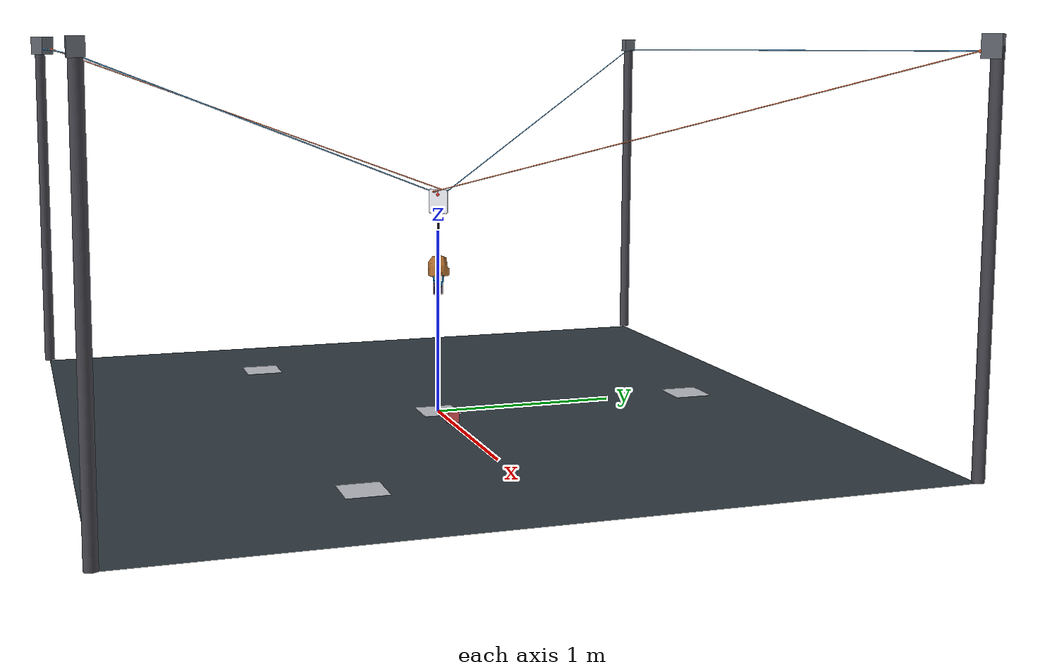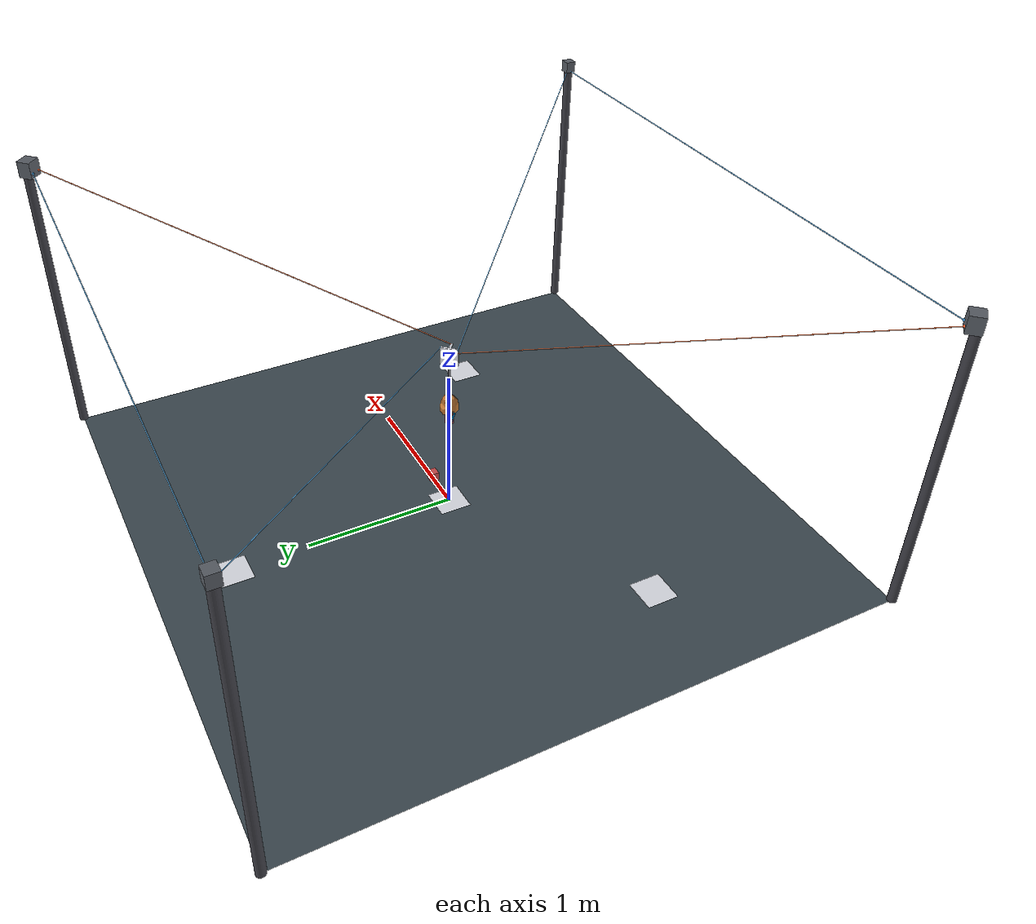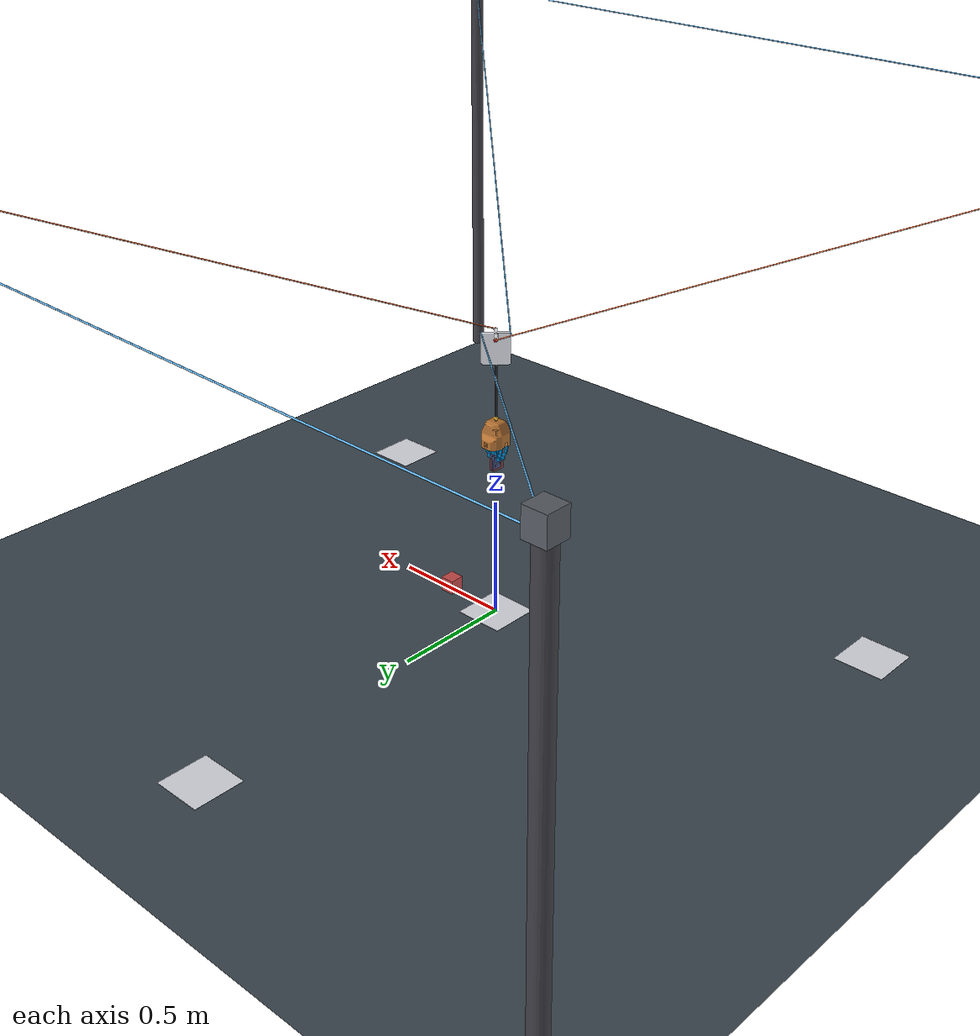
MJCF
<mujoco model="stringman_arpeggio_carbon270">

  <compiler angle="radian" autolimits="true"/>

  <option timestep="0.002" integrator="implicitfast" gravity="0 0 -9.81"/>

  <visual>
    <headlight diffuse="0.6 0.6 0.6" ambient="0.35 0.35 0.35" specular="0 0 0"/>
    <rgba haze="0.15 0.25 0.35 1"/>
    <global azimuth="140" elevation="-20" offwidth="1920" offheight="1080"/>
    <map znear="0.0007" zfar="5"/>
  </visual>

  <default>
    <geom friction="1.0 0.05 0.001" solimp="0.9 0.95 0.001" condim="4"/>
    <!-- Lines: thin, only ever in tension. -->
    <default class="line">
      <tendon width="0.0025" rgba="0.95 0.95 0.85 1" damping="4"/>
    </default>
    <default class="structure">
      <geom type="box" rgba="0.35 0.37 0.4 1" group="2"/>
    </default>
    <default class="viz">
      <geom contype="0" conaffinity="0" group="1" rgba="0.88 0.89 0.92 1" mass="0"/>
    </default>
    <default class="col">
      <geom group="3" rgba="0.9 0.4 0.2 0.35" mass="0"/>
    </default>
  </default>

  <asset>
    <texture type="skybox" builtin="gradient" rgb1="0.3 0.5 0.7" rgb2="0 0 0" width="512" height="3072"/>
    <texture name="floortex" type="2d" builtin="checker" rgb1="0.2 0.25 0.28" rgb2="0.28 0.33 0.36"
             width="512" height="512" mark="edge" markrgb="0.5 0.5 0.5"/>
    <material name="floor" texture="floortex" texuniform="true" texrepeat="8 8" reflectance="0.05"/>

    <!-- gantry.glb's own texture: it is the AprilTag itself, so the card renders as a
         readable tag rather than a white square. Matters if you ever point the anchor
         cameras at it. -->
    <texture name="gantry_tex" type="2d" file="meshes/gantry_tex.png"/>
    <material name="gantry_mat" texture="gantry_tex" specular="0.1" shininess="0.1"/>

    <texture name="tag_origin" type="2d" file="../hardware/boards/origin.png"/>
    <texture name="tag_cal_1" type="2d" file="../hardware/boards/cal_assist_1.png"/>
    <texture name="tag_cal_2" type="2d" file="../hardware/boards/cal_assist_2.png"/>
    <texture name="tag_cal_3" type="2d" file="../hardware/boards/cal_assist_3.png"/>
    <material name="mat_tag_origin" texture="tag_origin" specular="0" shininess="0"/>
    <material name="mat_tag_cal_1" texture="tag_cal_1" specular="0" shininess="0"/>
    <material name="mat_tag_cal_2" texture="tag_cal_2" specular="0" shininess="0"/>
    <material name="mat_tag_cal_3" texture="tag_cal_3" specular="0" shininess="0"/>

    <mesh name="gripper_shell" file="meshes/gripper_shell.obj"/>
    <mesh name="finger_left"   file="meshes/finger_left.obj"/>
    <mesh name="finger_right"  file="meshes/finger_right.obj"/>
    <mesh name="gantry_body"   file="meshes/gantry_body.obj"/>
  </asset>

  <worldbody>
    <light pos="0 0 4" dir="0 0 -1" directional="true" diffuse="0.5 0.5 0.5"/>
    <geom name="floor" type="plane" size="2 2 0.05" material="floor"/>

    <camera name="room" pos="4.4 -4.4 3.0" xyaxes="0.707 0.707 0 -0.3 0.3 0.9"/>

    <geom name="card_origin" class="viz" type="box" material="mat_tag_origin"
          size="0.105625 0.105625 0.0005" pos="0 0 0.0005"/>
    <geom name="card_cal_assist_1" class="viz" type="box" material="mat_tag_cal_1"
          size="0.105625 0.105625 0.0005" pos="0 1.5 0.0005"/>
    <geom name="card_cal_assist_2" class="viz" type="box" material="mat_tag_cal_2"
          size="0.105625 0.105625 0.0005" pos="-1.29904 -0.75 0.0005"/>
    <geom name="card_cal_assist_3" class="viz" type="box" material="mat_tag_cal_3"
          size="0.105625 0.105625 0.0005" pos="1.29904 -0.75 0.0005"/>

    <body name="anchor0" pos="2 2 2" euler="0 0 -0.7853981634">
      <geom class="structure" size="0.05 0.045 0.055" pos="0 -0.02 0"/>
      <geom class="structure" type="cylinder" size="0.03 1.0" pos="0 0 -1.0" rgba="0.25 0.25 0.28 1"/>
      <!-- right eyelet: the direct line -->
      <site name="a0_direct" pos="0.031 -0.068 -0.022" size="0.008" rgba="1 0.4 0.2 1"/>
      <!-- left eyelet: the indirect line, routed to the far post -->
      <site name="a0_indirect" pos="-0.031 -0.068 -0.022" size="0.008" rgba="0.3 0.7 1 1"/>
      <camera name="anchor0_cam" pos="0.007 -0.033 0.071" fovy="41.535"
              xyaxes="-1 0 0  0 -0.5 0.8660254"/>
    </body>

    <!-- ANCHOR 1 at (-2, -2, 2), diagonally opposite anchor 0, yaw 3pi/4 -->
    <body name="anchor1" pos="-2 -2 2" euler="0 0 2.3561944902">
      <geom class="structure" size="0.05 0.045 0.055" pos="0 -0.02 0"/>
      <geom class="structure" type="cylinder" size="0.03 1.0" pos="0 0 -1.0" rgba="0.25 0.25 0.28 1"/>
      <site name="a1_direct" pos="0.031 -0.068 -0.022" size="0.008" rgba="1 0.4 0.2 1"/>
      <site name="a1_indirect" pos="-0.031 -0.068 -0.022" size="0.008" rgba="0.3 0.7 1 1"/>
      <camera name="anchor1_cam" pos="0.007 -0.033 0.071" fovy="41.535"
              xyaxes="-1 0 0  0 -0.5 0.8660254"/>
    </body>

    <body name="eyelet_post_A" pos="-2 2 2">
      <geom class="structure" size="0.035 0.035 0.04"/>
      <geom class="structure" type="cylinder" size="0.03 1.0" pos="0 0 -1.0" rgba="0.25 0.25 0.28 1"/>
      <site name="eyelet_A" pos="0 0 -0.03" size="0.01" rgba="0.3 0.7 1 1"/>
    </body>
    <body name="eyelet_post_B" pos="2 -2 2">
      <geom class="structure" size="0.035 0.035 0.04"/>
      <geom class="structure" type="cylinder" size="0.03 1.0" pos="0 0 -1.0" rgba="0.25 0.25 0.28 1"/>
      <site name="eyelet_B" pos="0 0 -0.03" size="0.01" rgba="0.3 0.7 1 1"/>
    </body>

    <body name="gantry" pos="0 0 1.2">
      <freejoint name="gantry_free"/>
      <inertial pos="0 0 -0.037" mass="0.35" diaginertia="0.0016 0.0016 0.0016"/>

      <geom class="viz" type="mesh" mesh="gantry_body" material="gantry_mat"
            euler="1.5707963268 0 0"/>
      <geom name="gantry_collide" class="col" type="box" size="0.0442 0.0445 0.0652" pos="0 0 -0.0369"/>

      <site name="gantry_marker" pos="0 0 -0.037" euler="0 0 -0.7853981634"
            size="0.007 0.04575 0.04575" type="box" rgba="1 0.9 0.2 0.25"/>

      <!-- gantry origin: the nominal point where all four lines meet -->
      <site name="gantry_origin" pos="0 0 0" size="0.012" rgba="1 0.2 0.2 1"/>

      <site name="hook_0" pos="0.0389 -0.0389 0.02" size="0.005" rgba="1 0.4 0.2 1"/>
      <site name="hook_1" pos="0.0389 0.0389 0.02" size="0.005" rgba="0.3 0.7 1 1"/>
      <site name="hook_2" pos="-0.0389 0.0389 0.02" size="0.005" rgba="1 0.4 0.2 1"/>
      <site name="hook_3" pos="-0.0389 -0.0389 0.02" size="0.005" rgba="0.3 0.7 1 1"/>

      <!-- 270 mm carbon tube, ~11 mm OD (the radius gantry.glb draws its pole at) -->
      <geom name="pole" type="capsule" fromto="0 0 -0.06 0 0 -0.329" size="0.0053"
            mass="0.045" rgba="0.12 0.12 0.14 1"/>
      <site name="grommet" pos="0 0 -0.329" size="0.008" rgba="1 0.8 0.2 1"/>

      <body name="gripper" pos="-0.0006 0.0118 -0.4457" euler="1.5707963268 0 0">
        <!-- wrist: rotation about the pole axis (gripper local +y), through the grommet.
             Firmware spin runs 0..6*pi, i.e. +/-540 deg about the neutral heading. -->
        <joint name="wrist" type="hinge" pos="0.0006 0.1167 0.0118" axis="0 1 0"
               range="-9.42477796 9.42477796" damping="0.02" armature="0.0005"/>

        <!-- gripper_cog (0, 0.055, 0.011); mass is still an estimate -->
        <inertial pos="0 0.055 0.011" mass="0.60" diaginertia="0.0022 0.0011 0.0022"/>

        <!-- shell: 103.4 x 104.4 x 110 mm, spanning y 0.0023..0.1067, z -0.0458..0.0641,
             so it is deeper behind the origin than in front of it -->
        <geom class="viz" type="mesh" mesh="gripper_shell" rgba="0.72 0.45 0.20 1"/>
        <geom name="shell_collide" class="col" type="box"
              size="0.0517 0.0522 0.055" pos="0 0.0545 0.0092"/>

        <site name="gripper_cog" pos="0 0.055 0.011" size="0.006" rgba="1 0.2 1 1"/>
        <site name="gripper_imu" pos="0.022 0.03 0.029" size="0.005" rgba="0.2 1 0.4 1"
              axisangle="0 -0.7071067812 -0.7071067812 3.1415926536"/>
        <site name="grommet_gripper" pos="0.0006 0.1167 0.0118" size="0.006" rgba="1 0.8 0.2 1"/>
        <!-- rangefinder empty from gripper.glb, at (0, 0.0025, 0.0502) -->
        <!-- MuJoCo casts a rangefinder ray along the site's +z, so the site is turned to
             put that down the gripper frame's -y. -->
        <site name="rangefinder" pos="0 0.0025 0.0502" size="0.004" rgba="1 0 0 1"
              euler="1.5707963268 0 0"/>
        <camera name="gripper_cam" pos="0.0004 0.0026 -0.0261" euler="-1.728957 0 0" fovy="42.557"/>

        <body name="finger_left" pos="0.025 0.041 0.0108">
          <joint name="finger_left" type="hinge" axis="0 0 -1" range="-1.0297 0.05"
                 damping="0.01" armature="0.0002"/>
          <geom class="viz" type="mesh" mesh="finger_left" mass="0.04" rgba="0.0 0.4745 0.7255 1"/>
          <geom name="pad_left" class="col" type="box" size="0.006 0.030 0.022"
                pos="-0.019 -0.110 0.002" friction="1.5 0.05 0.001"/>
          <!-- the volume the touch sensor sums contact forces over: the pad geom, a
               little oversized so contacts on its surface fall inside -->
          <site name="finger_pad_left" type="box" size="0.008 0.032 0.024"
                pos="-0.019 -0.110 0.002" rgba="1 0 0 0.3"/>
        </body>
        <body name="finger_right" pos="-0.025 0.041 0.0108">
          <joint name="finger_right" type="hinge" axis="0 0 1" range="-1.0297 0.05"
                 damping="0.01" armature="0.0002"/>
          <geom class="viz" type="mesh" mesh="finger_right" mass="0.04" rgba="0.0 0.4745 0.7255 1"/>
          <geom name="pad_right" class="col" type="box" size="0.006 0.030 0.022"
                pos="0.019 -0.110 0.002" friction="1.5 0.05 0.001"/>
          <site name="finger_pad_right" type="box" size="0.008 0.032 0.024"
                pos="0.019 -0.110 0.002" rgba="1 0 0 0.3"/>
        </body>
      </body>
    </body>

    <!-- something to pick up -->
    <body name="payload" pos="0.25 0 0.03">
      <freejoint name="payload_free"/>
      <geom name="payload" type="box" size="0.03 0.03 0.03" mass="0.12" rgba="0.8 0.3 0.3 1"/>
    </body>
  </worldbody>

  <tendon>
    <spatial name="line_0_direct" class="line" limited="true" range="0 7.5" rgba="1 0.5 0.3 1">
      <site site="a0_direct"/>
      <site site="hook_0"/>
    </spatial>
    <spatial name="line_1_indirect" class="line" limited="true" range="0 11.5" rgba="0.4 0.75 1 1">
      <site site="a0_indirect"/>
      <site site="eyelet_A"/>
      <site site="hook_1"/>
    </spatial>
    <spatial name="line_2_direct" class="line" limited="true" range="0 7.5" rgba="1 0.5 0.3 1">
      <site site="a1_direct"/>
      <site site="hook_2"/>
    </spatial>
    <spatial name="line_3_indirect" class="line" limited="true" range="0 11.5" rgba="0.4 0.75 1 1">
      <site site="a1_indirect"/>
      <site site="eyelet_B"/>
      <site site="hook_3"/>
    </spatial>
  </tendon>

  <actuator>
    <!-- direct line: no fixed run, so bias0 = 0 and ctrl is the tendon length outright -->
    <general name="spool_0_direct" tendon="line_0_direct" ctrlrange="0 7" forcerange="-25 0"
             gainprm="4000 0 0" biastype="affine" biasprm="0 -4000 -80"/>
    <!-- indirect: RUN = 3.9301 m  ->  bias0 = 4000 * 3.9301 -->
    <general name="spool_1_indirect" tendon="line_1_indirect" ctrlrange="0 7" forcerange="-25 0"
             gainprm="4000 0 0" biastype="affine" biasprm="15720.4 -4000 -80"/>
    <general name="spool_2_direct" tendon="line_2_direct" ctrlrange="0 7" forcerange="-25 0"
             gainprm="4000 0 0" biastype="affine" biasprm="0 -4000 -80"/>
    <!-- indirect: RUN = 3.9301 m  ->  bias0 = 4000 * 3.9301 -->
    <general name="spool_3_indirect" tendon="line_3_indirect" ctrlrange="0 7" forcerange="-25 0"
             gainprm="4000 0 0" biastype="affine" biasprm="15720.4 -4000 -80"/>

    <!-- wrist: commanded in radians of spin -->
    <position name="wrist" joint="wrist" kp="1.5" kv="0.08" ctrlrange="-9.42477796 9.42477796" forcerange="-2 2"/>
    <position name="finger" joint="finger_left" kp="3.0" kv="0.05"
              ctrlrange="-1.0297 0.05" forcerange="-4 4"/>
  </actuator>

  <!-- the two jaws are geared together on one servo -->
  <equality>
    <joint joint1="finger_right" joint2="finger_left" polycoef="0 1 0 0 0"/>
  </equality>

  <sensor>
    <tendonpos name="len_0" tendon="line_0_direct"/>
    <tendonpos name="len_1" tendon="line_1_indirect"/>
    <tendonpos name="len_2" tendon="line_2_direct"/>
    <tendonpos name="len_3" tendon="line_3_indirect"/>
    <actuatorfrc name="tension_0" actuator="spool_0_direct"/>
    <actuatorfrc name="tension_1" actuator="spool_1_indirect"/>
    <actuatorfrc name="tension_2" actuator="spool_2_direct"/>
    <actuatorfrc name="tension_3" actuator="spool_3_indirect"/>
    <framepos name="gantry_pos" objtype="site" objname="gantry_origin"/>
    <framepos name="gripper_pos" objtype="body" objname="gripper"/>
    <touch name="pad_touch_left" site="finger_pad_left"/>
    <touch name="pad_touch_right" site="finger_pad_right"/>
    <rangefinder name="gripper_range" site="rangefinder"/>
    <gyro name="gripper_gyro" site="gripper_imu"/>
    <accelerometer name="gripper_accel" site="gripper_imu"/>
  </sensor>

  <keyframe>
    <key name="hang"
         qpos="0 0 1.2  0.7071068 0 0 0.7071068   0   -0.687 -0.687   0.25 0 0.03  1 0 0 0"
         ctrl="2.8098 2.8730 2.8098 2.8730  0  -0.687"/>
  </keyframe>
</mujoco>
